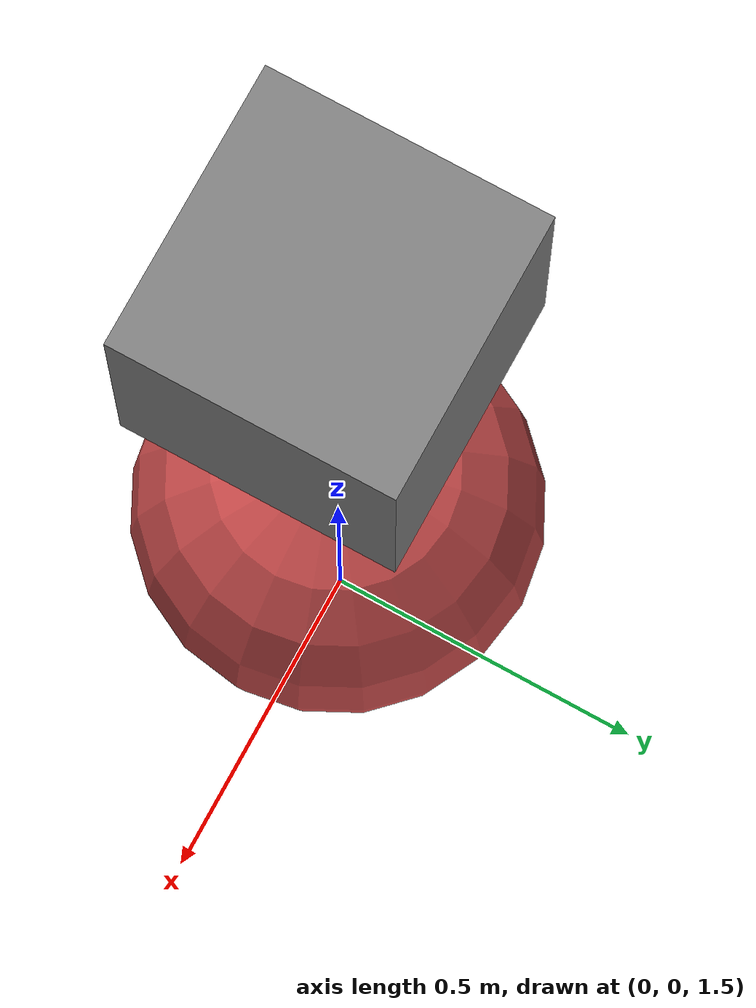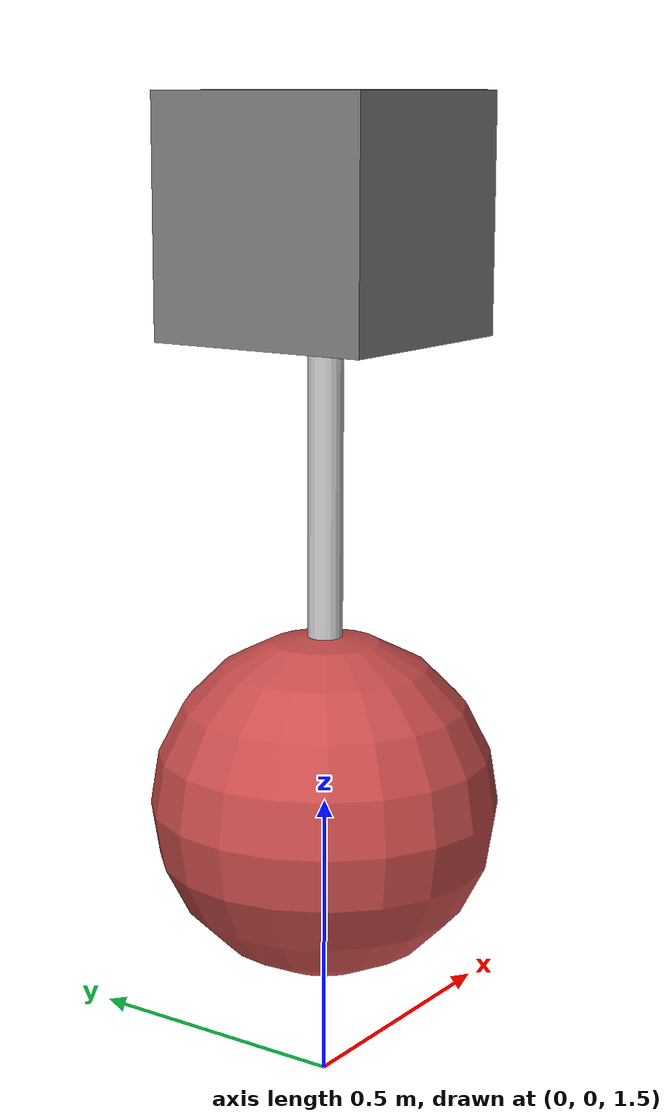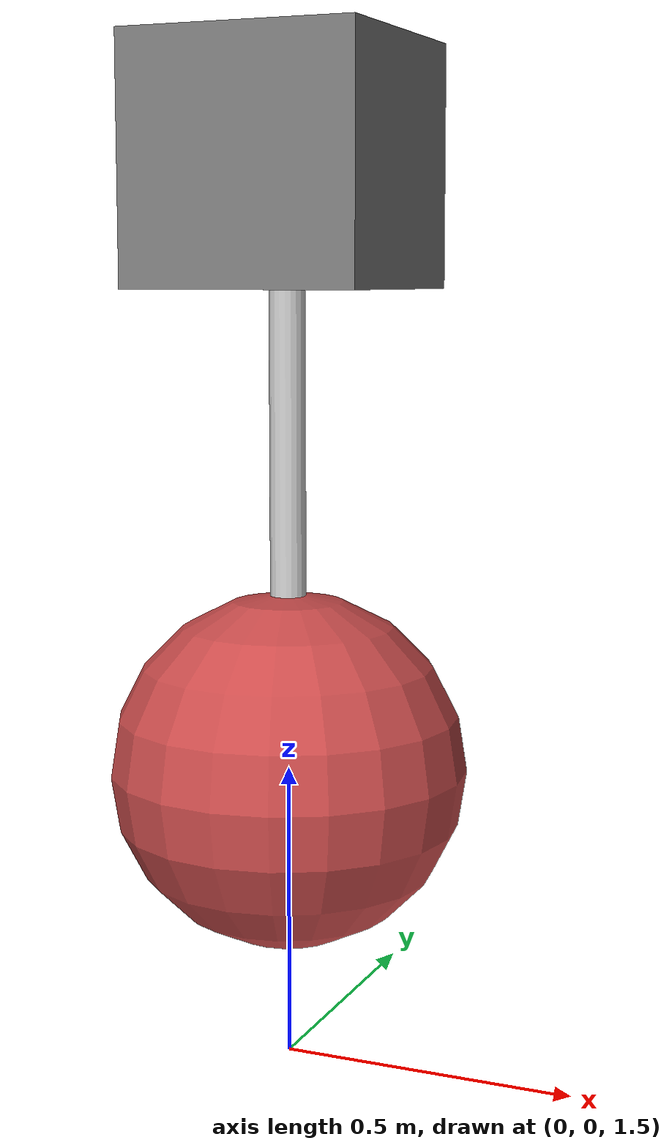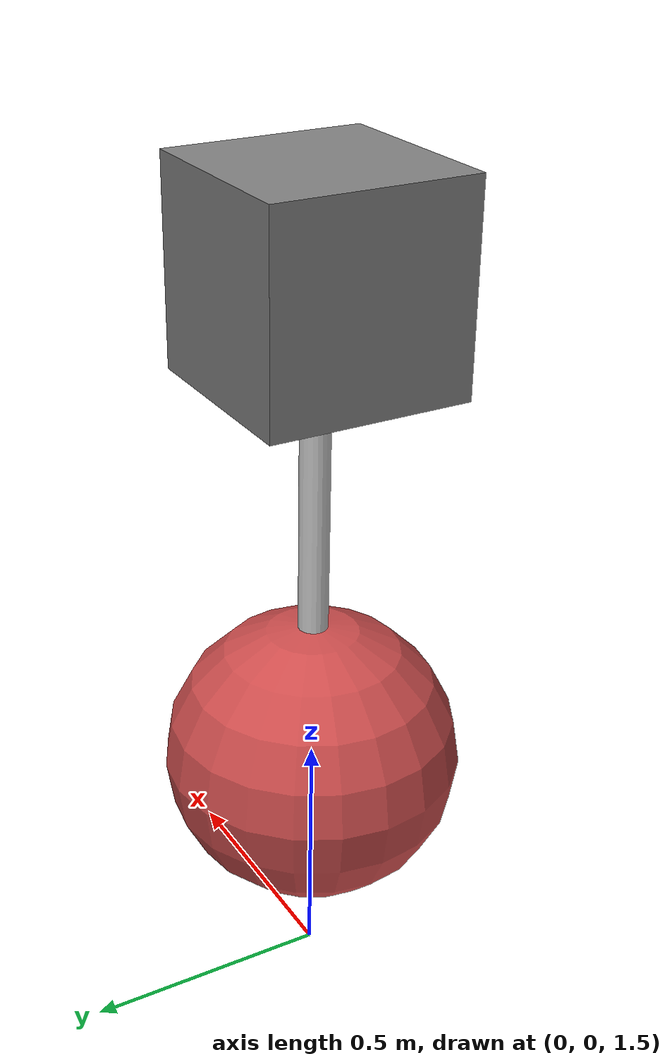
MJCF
<mujoco>
  <option gravity="0 0 -9.81" />
  <worldbody>

    <body name="object_1" pos="0 0 2">
      <geom type="sphere" size="0.3" density="1" rgba="0.8 0.3 0.3 1" />
      <joint name="object_1_joint" type="free" />
    </body>

    <body name="object_2" pos="0 0 3">
      <geom type="capsule" fromto="0 0 0 0 0 -1" size="0.03" rgba="0.8 0.8 0.8 1" />
    </body>

    <body name="object_3" pos="0 0 3">
      <geom type="box" size="0.2 0.2 0.2" rgba="0.5 0.5 0.5 1" />
    </body>
  </worldbody>
<joint name="joint_object_1_object_3" type="revolute" body1="object_1" body2="object_3" /><joint name="joint_object_1_object_2" type="revolute" body1="object_1" body2="object_2" /><joint name="joint_object_2_object_3" type="revolute" body1="object_2" body2="object_3" /></mujoco>
